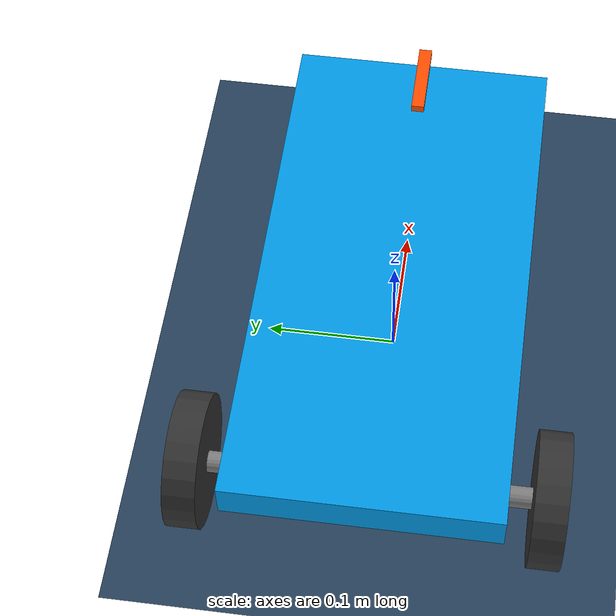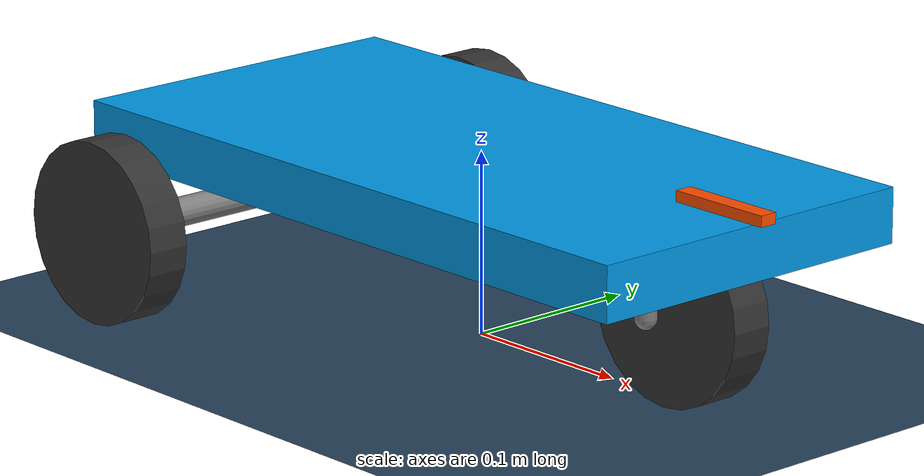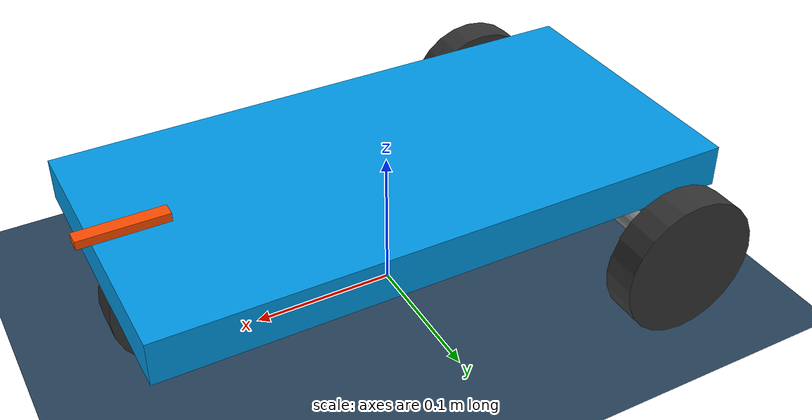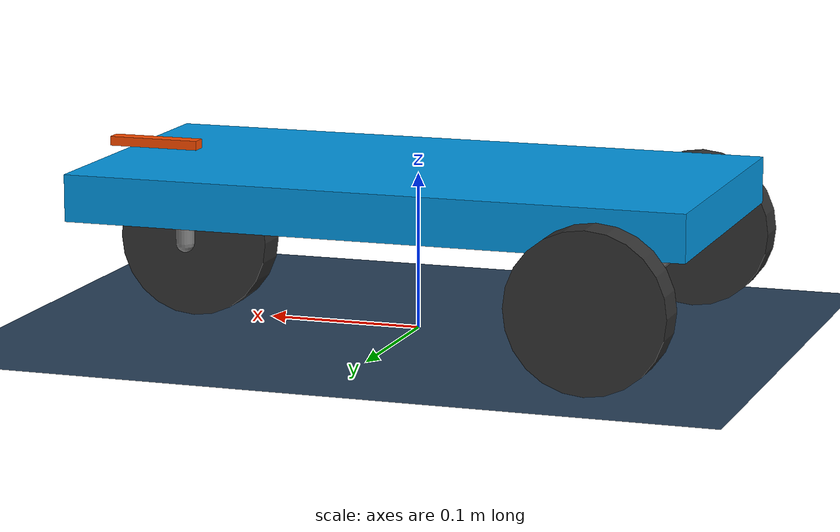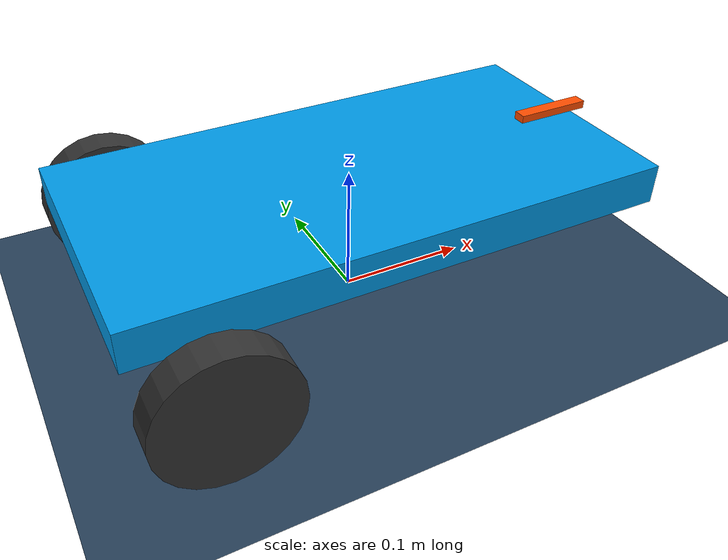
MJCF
<mujoco model="tricycle_drive">
  <statistic center="0 0 0.1" extent="1.2" meansize=".05"/>

  <visual>
    <headlight diffuse="0.6 0.6 0.6" ambient="0.3 0.3 0.3" specular="0 0 0"/>
    <rgba haze="0.15 0.25 0.35 1"/>
    <global azimuth="-20" elevation="-20" ellipsoidinertia="true"/>
  </visual>

  <asset>
    <texture type="skybox" builtin="gradient" rgb1="0.3 0.5 0.7" rgb2="0 0 0" width="512" height="3072"/>
    <texture type="2d" name="groundplane" builtin="checker" mark="edge" rgb1="0.2 0.3 0.4" rgb2="0.1 0.2 0.3"
      markrgb="0.8 0.8 0.8" width="300" height="300"/>
    <material name="groundplane" texture="groundplane" texuniform="true" texrepeat="5 5" reflectance="0.2"/>
  </asset>

  <!-- implicitfast keeps the stiff velocity servos on the light wheels stable. -->
  <option gravity="0 0 -9.81" timestep="0.002" integrator="implicitfast"/>

  <!-- Only the wheels touch the ground; the rest of the robot is visual. -->
  <default>
    <geom contype="0" conaffinity="0"/>
    <default class="wheel">
      <geom type="cylinder" size="0.05 0.012" zaxis="0 1 0" contype="1" conaffinity="1" rgba="0.2 0.2 0.2 1"
        mass="0.15"/>
      <joint type="hinge" axis="0 1 0" damping="0.01" armature="0.0005"/>
    </default>
  </default>

  <worldbody>
    <light pos="0 0 1.5" dir="0 0 -1" directional="true"/>
    <geom name="floor" size="0 0 0.05" type="plane" material="groundplane" contype="1" conaffinity="1"/>

    <body name="chassis" pos="0 0 0.05">
      <freejoint/>
      <geom name="frame" type="box" pos="0 0 0.04" size="0.2 0.1 0.015" rgba="0 0.6 0.9 1" mass="2"/>
      <geom name="rear_axle" type="capsule" fromto="-0.15 -0.12 0 -0.15 0.12 0" size="0.008" rgba="0.5 0.5 0.5 1"
        mass="0"/>
      <site name="rear_axle_center" pos="-0.15 0 0"/>

      <!-- Wheelbase L = 0.3 m, rear track 0.26 m, wheel radius r = 0.05 m. -->
      <body name="rear_left_wheel" pos="-0.15 0.13 0">
        <joint name="rear_left_wheel" class="wheel"/>
        <geom name="rear_left_wheel" class="wheel"/>
      </body>
      <body name="rear_right_wheel" pos="-0.15 -0.13 0">
        <joint name="rear_right_wheel" class="wheel"/>
        <geom name="rear_right_wheel" class="wheel"/>
      </body>

      <!-- Front fork: a vertical steering hinge carrying the driven wheel. -->
      <body name="fork" pos="0.15 0 0">
        <joint name="steering" type="hinge" axis="0 0 1" range="-80 80" damping="0.1" armature="0.001"/>
        <geom name="fork_left" type="capsule" fromto="0 0.025 0 0 0.025 0.04" size="0.006" rgba="0.5 0.5 0.5 1"
          mass="0.02"/>
        <geom name="fork_right" type="capsule" fromto="0 -0.025 0 0 -0.025 0.04" size="0.006" rgba="0.5 0.5 0.5 1"
          mass="0.02"/>
        <geom name="heading" type="box" pos="0.03 0 0.06" size="0.03 0.005 0.003" rgba="1 0.3 0 1" mass="0"/>
        <body name="front_wheel">
          <joint name="front_wheel" class="wheel"/>
          <geom name="front_wheel" class="wheel"/>
        </body>
      </body>
    </body>
  </worldbody>

  <sensor>
    <jointpos name="steering_pos" joint="steering"/>
    <jointvel name="front_wheel_vel" joint="front_wheel"/>
    <framepos name="rear_axle_pos" objtype="site" objname="rear_axle_center"/>
    <velocimeter name="rear_axle_linvel" site="rear_axle_center"/>
    <gyro name="chassis_angvel" site="rear_axle_center"/>
  </sensor>

  <actuator>
    <!-- Steering angle command in rad, front wheel speed command in rad/s (15 rad/s is 0.75 m/s). -->
    <position name="steering" joint="steering" kp="20" dampratio="1" ctrlrange="-1.4 1.4"/>
    <velocity name="front_wheel" joint="front_wheel" kv="0.5" ctrlrange="-15 15" forcerange="-3 3"/>
  </actuator>
</mujoco>
